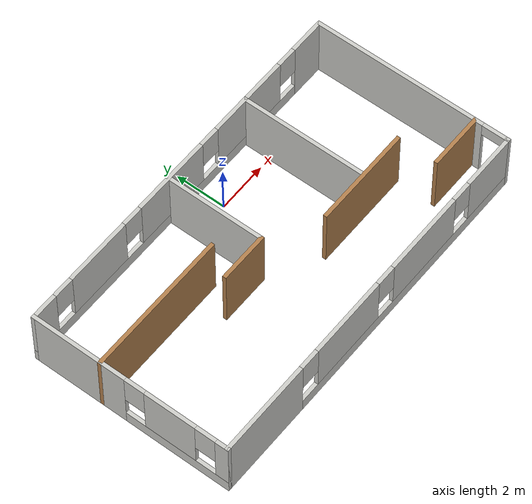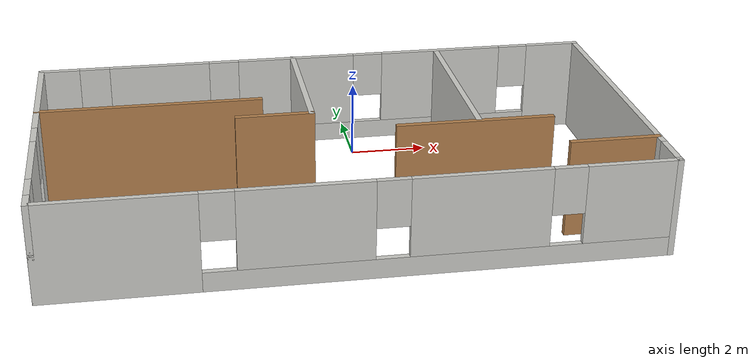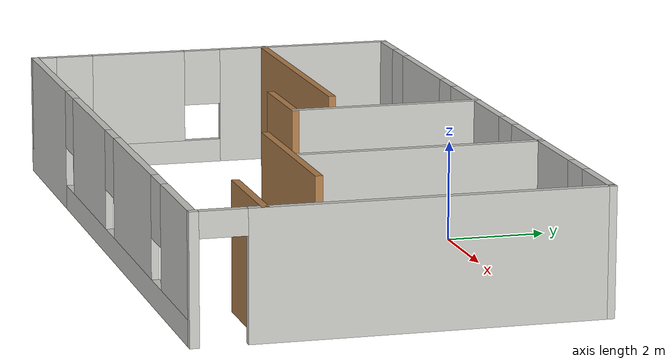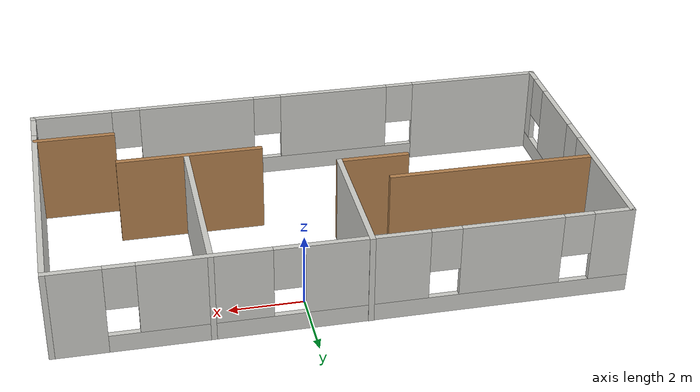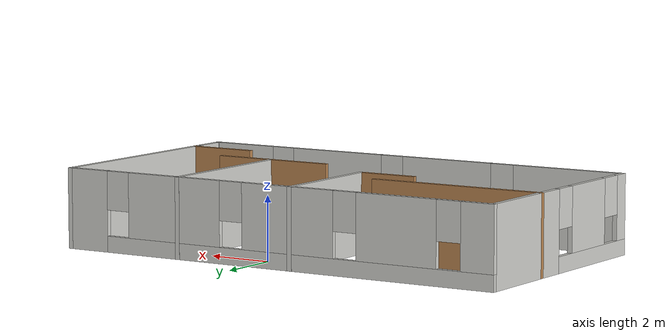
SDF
<?xml version='1.0'?>
<sdf version='1.7'>
  <model name='restaurant'>
    <pose>-0.886292 -2.87012 0 0 -0 0</pose>
    <link name='Wall_15'>
      <collision name='Wall_15_Collision'>
        <geometry>
          <box>
            <size>4 0.15 2.5</size>
          </box>
        </geometry>
        <pose>0 0 1.25 0 -0 0</pose>
      </collision>
      <visual name='Wall_15_Visual'>
        <pose>0 0 1.25 0 -0 0</pose>
        <geometry>
          <box>
            <size>4 0.15 2.5</size>
          </box>
        </geometry>
        <material>
          <script>
            <uri>file://media/materials/scripts/gazebo.material</uri>
            <name>Gazebo/CeilingTiled</name>
          </script>
          <ambient>1 1 1 1</ambient>
        </material>
        <meta>
          <layer>0</layer>
        </meta>
      </visual>
      <pose>-0.626194 2.00622 0 0 -0 -1.5708</pose>
    </link>
    <link name='Wall_16'>
      <collision name='Wall_16_Collision'>
        <geometry>
          <box>
            <size>2 0.15 2.5</size>
          </box>
        </geometry>
        <pose>0 0 1.25 0 -0 0</pose>
      </collision>
      <visual name='Wall_16_Visual'>
        <pose>0 0 1.25 0 -0 0</pose>
        <geometry>
          <box>
            <size>2 0.15 2.5</size>
          </box>
        </geometry>
        <material>
          <script>
            <uri>file://media/materials/scripts/gazebo.material</uri>
            <name>Gazebo/Wood</name>
          </script>
          <ambient>1 1 1 1</ambient>
        </material>
        <meta>
          <layer>0</layer>
        </meta>
      </visual>
      <pose>-1.55119 0.081215 0 0 -0 3.14159</pose>
    </link>
    <link name='Wall_19'>
      <collision name='Wall_19_Collision'>
        <geometry>
          <box>
            <size>5 0.15 2.5</size>
          </box>
        </geometry>
        <pose>0 0 1.25 0 -0 0</pose>
      </collision>
      <visual name='Wall_19_Visual'>
        <pose>0 0 1.25 0 -0 0</pose>
        <geometry>
          <box>
            <size>5 0.15 2.5</size>
          </box>
        </geometry>
        <material>
          <script>
            <uri>file://media/materials/scripts/gazebo.material</uri>
            <name>Gazebo/CeilingTiled</name>
          </script>
          <ambient>1 1 1 1</ambient>
        </material>
        <meta>
          <layer>0</layer>
        </meta>
      </visual>
      <pose>3.4023 1.49471 0 0 -0 -1.5708</pose>
    </link>
    <link name='Wall_2'>
      <pose>0 -3.93121 0 0 -0 0</pose>
      <visual name='Wall_2_Visual_0'>
        <pose>-5.60047 0 1.25 0 -0 0</pose>
        <geometry>
          <box>
            <size>3.79905 0.15 2.5</size>
          </box>
        </geometry>
        <material>
          <script>
            <uri>file://media/materials/scripts/gazebo.material</uri>
            <name>Gazebo/CeilingTiled</name>
          </script>
          <ambient>1 1 1 1</ambient>
        </material>
        <meta>
          <layer>0</layer>
        </meta>
      </visual>
      <collision name='Wall_2_Collision_0'>
        <geometry>
          <box>
            <size>3.79905 0.15 2.5</size>
          </box>
        </geometry>
        <pose>-5.60047 0 1.25 0 -0 0</pose>
      </collision>
      <visual name='Wall_2_Visual_1'>
        <pose>1.89953 0 0.25 0 -0 0</pose>
        <geometry>
          <box>
            <size>11.2009 0.15 0.5</size>
          </box>
        </geometry>
        <material>
          <script>
            <uri>file://media/materials/scripts/gazebo.material</uri>
            <name>Gazebo/CeilingTiled</name>
          </script>
          <ambient>1 1 1 1</ambient>
        </material>
        <meta>
          <layer>0</layer>
        </meta>
      </visual>
      <collision name='Wall_2_Collision_1'>
        <geometry>
          <box>
            <size>11.2009 0.15 0.5</size>
          </box>
        </geometry>
        <pose>1.89953 0 0.25 0 -0 0</pose>
      </collision>
      <visual name='Wall_2_Visual_2'>
        <pose>-1.30593 0 1.5 0 -0 0</pose>
        <geometry>
          <box>
            <size>3.19003 0.15 2</size>
          </box>
        </geometry>
        <material>
          <script>
            <uri>file://media/materials/scripts/gazebo.material</uri>
            <name>Gazebo/CeilingTiled</name>
          </script>
          <ambient>1 1 1 1</ambient>
        </material>
        <meta>
          <layer>0</layer>
        </meta>
      </visual>
      <collision name='Wall_2_Collision_2'>
        <geometry>
          <box>
            <size>3.19003 0.15 2</size>
          </box>
        </geometry>
        <pose>-1.30593 0 1.5 0 -0 0</pose>
      </collision>
      <visual name='Wall_2_Visual_3'>
        <pose>2.7506 0 1.5 0 -0 0</pose>
        <geometry>
          <box>
            <size>3.32303 0.15 2</size>
          </box>
        </geometry>
        <material>
          <script>
            <uri>file://media/materials/scripts/gazebo.material</uri>
            <name>Gazebo/CeilingTiled</name>
          </script>
          <ambient>1 1 1 1</ambient>
        </material>
        <meta>
          <layer>0</layer>
        </meta>
      </visual>
      <collision name='Wall_2_Collision_3'>
        <geometry>
          <box>
            <size>3.32303 0.15 2</size>
          </box>
        </geometry>
        <pose>2.7506 0 1.5 0 -0 0</pose>
      </collision>
      <visual name='Wall_2_Visual_4'>
        <pose>6.35606 0 1.5 0 -0 0</pose>
        <geometry>
          <box>
            <size>2.28789 0.15 2</size>
          </box>
        </geometry>
        <material>
          <script>
            <uri>file://media/materials/scripts/gazebo.material</uri>
            <name>Gazebo/CeilingTiled</name>
          </script>
          <ambient>1 1 1 1</ambient>
        </material>
        <meta>
          <layer>0</layer>
        </meta>
      </visual>
      <collision name='Wall_2_Collision_4'>
        <geometry>
          <box>
            <size>2.28789 0.15 2</size>
          </box>
        </geometry>
        <pose>6.35606 0 1.5 0 -0 0</pose>
      </collision>
      <visual name='Wall_2_Visual_5'>
        <pose>-3.30095 0 1.9 0 -0 0</pose>
        <geometry>
          <box>
            <size>0.8 0.15 1.2</size>
          </box>
        </geometry>
        <material>
          <script>
            <uri>file://media/materials/scripts/gazebo.material</uri>
            <name>Gazebo/CeilingTiled</name>
          </script>
          <ambient>1 1 1 1</ambient>
        </material>
        <meta>
          <layer>0</layer>
        </meta>
      </visual>
      <collision name='Wall_2_Collision_5'>
        <geometry>
          <box>
            <size>0.8 0.15 1.2</size>
          </box>
        </geometry>
        <pose>-3.30095 0 1.9 0 -0 0</pose>
      </collision>
      <visual name='Wall_2_Visual_6'>
        <pose>0.689084 0 1.9 0 -0 0</pose>
        <geometry>
          <box>
            <size>0.8 0.15 1.2</size>
          </box>
        </geometry>
        <material>
          <script>
            <uri>file://media/materials/scripts/gazebo.material</uri>
            <name>Gazebo/CeilingTiled</name>
          </script>
          <ambient>1 1 1 1</ambient>
        </material>
        <meta>
          <layer>0</layer>
        </meta>
      </visual>
      <collision name='Wall_2_Collision_6'>
        <geometry>
          <box>
            <size>0.8 0.15 1.2</size>
          </box>
        </geometry>
        <pose>0.689084 0 1.9 0 -0 0</pose>
      </collision>
      <visual name='Wall_2_Visual_7'>
        <pose>4.81211 0 1.9 0 -0 0</pose>
        <geometry>
          <box>
            <size>0.8 0.15 1.2</size>
          </box>
        </geometry>
        <material>
          <script>
            <uri>file://media/materials/scripts/gazebo.material</uri>
            <name>Gazebo/CeilingTiled</name>
          </script>
          <ambient>1 1 1 1</ambient>
        </material>
        <meta>
          <layer>0</layer>
        </meta>
      </visual>
      <collision name='Wall_2_Collision_7'>
        <geometry>
          <box>
            <size>0.8 0.15 1.2</size>
          </box>
        </geometry>
        <pose>4.81211 0 1.9 0 -0 0</pose>
      </collision>
    </link>
    <link name='Wall_21'>
      <collision name='Wall_21_Collision'>
        <geometry>
          <box>
            <size>4 0.15 2.5</size>
          </box>
        </geometry>
        <pose>0 0 1.25 0 -0 0</pose>
      </collision>
      <visual name='Wall_21_Visual'>
        <pose>0 0 1.25 0 -0 0</pose>
        <geometry>
          <box>
            <size>4 0.15 2.5</size>
          </box>
        </geometry>
        <material>
          <script>
            <uri>file://media/materials/scripts/gazebo.material</uri>
            <name>Gazebo/Wood</name>
          </script>
          <ambient>1 1 1 1</ambient>
        </material>
        <meta>
          <layer>0</layer>
        </meta>
      </visual>
      <pose>3.30569 -1.02793 0 0 -0 0</pose>
    </link>
    <link name='Wall_23'>
      <collision name='Wall_23_Collision'>
        <geometry>
          <box>
            <size>2.25 0.15 2.5</size>
          </box>
        </geometry>
        <pose>0 0 1.25 0 -0 0</pose>
      </collision>
      <visual name='Wall_23_Visual'>
        <pose>0 0 1.25 0 -0 0</pose>
        <geometry>
          <box>
            <size>2.25 0.15 2.5</size>
          </box>
        </geometry>
        <material>
          <script>
            <uri>file://media/materials/scripts/gazebo.material</uri>
            <name>Gazebo/Wood</name>
          </script>
          <ambient>1 1 1 1</ambient>
        </material>
        <meta>
          <layer>0</layer>
        </meta>
      </visual>
      <pose>6.34233 -2.59734 0 0 -0 3.14159</pose>
    </link>
    <link name='Wall_3'>
      <pose>7.425 -0.006215 0 0 -0 1.5708</pose>
      <visual name='Wall_3_Visual_0'>
        <pose>-3.9082 0 1.25 0 -0 0</pose>
        <geometry>
          <box>
            <size>0.183604 0.15 2.5</size>
          </box>
        </geometry>
        <material>
          <script>
            <uri>file://media/materials/scripts/gazebo.material</uri>
            <name>Gazebo/CeilingTiled</name>
          </script>
          <ambient>1 1 1 1</ambient>
        </material>
        <meta>
          <layer>0</layer>
        </meta>
      </visual>
      <collision name='Wall_3_Collision_0'>
        <geometry>
          <box>
            <size>0.183604 0.15 2.5</size>
          </box>
        </geometry>
        <pose>-3.9082 0 1.25 0 -0 0</pose>
      </collision>
      <visual name='Wall_3_Visual_1'>
        <pose>0.541802 0 1.25 0 -0 0</pose>
        <geometry>
          <box>
            <size>6.9164 0.15 2.5</size>
          </box>
        </geometry>
        <material>
          <script>
            <uri>file://media/materials/scripts/gazebo.material</uri>
            <name>Gazebo/CeilingTiled</name>
          </script>
          <ambient>1 1 1 1</ambient>
        </material>
        <meta>
          <layer>0</layer>
        </meta>
      </visual>
      <collision name='Wall_3_Collision_1'>
        <geometry>
          <box>
            <size>6.9164 0.15 2.5</size>
          </box>
        </geometry>
        <pose>0.541802 0 1.25 0 -0 0</pose>
      </collision>
      <visual name='Wall_3_Visual_2'>
        <pose>-3.3664 0 2.25 0 -0 0</pose>
        <geometry>
          <box>
            <size>0.9 0.15 0.5</size>
          </box>
        </geometry>
        <material>
          <script>
            <uri>file://media/materials/scripts/gazebo.material</uri>
            <name>Gazebo/CeilingTiled</name>
          </script>
          <ambient>1 1 1 1</ambient>
        </material>
        <meta>
          <layer>0</layer>
        </meta>
      </visual>
      <collision name='Wall_3_Collision_2'>
        <geometry>
          <box>
            <size>0.9 0.15 0.5</size>
          </box>
        </geometry>
        <pose>-3.3664 0 2.25 0 -0 0</pose>
      </collision>
    </link>
    <link name='Wall_4'>
      <pose>0 3.91879 0 0 -0 3.14159</pose>
      <visual name='Wall_4_Visual_0'>
        <pose>-6.75506 0 1.25 0 -0 0</pose>
        <geometry>
          <box>
            <size>1.48988 0.15 2.5</size>
          </box>
        </geometry>
        <material>
          <script>
            <uri>file://media/materials/scripts/gazebo.material</uri>
            <name>Gazebo/CeilingTiled</name>
          </script>
          <ambient>1 1 1 1</ambient>
        </material>
        <meta>
          <layer>0</layer>
        </meta>
      </visual>
      <collision name='Wall_4_Collision_0'>
        <geometry>
          <box>
            <size>1.48988 0.15 2.5</size>
          </box>
        </geometry>
        <pose>-6.75506 0 1.25 0 -0 0</pose>
      </collision>
      <visual name='Wall_4_Visual_1'>
        <pose>0.74494 0 0.25 0 -0 0</pose>
        <geometry>
          <box>
            <size>13.5101 0.15 0.5</size>
          </box>
        </geometry>
        <material>
          <script>
            <uri>file://media/materials/scripts/gazebo.material</uri>
            <name>Gazebo/CeilingTiled</name>
          </script>
          <ambient>1 1 1 1</ambient>
        </material>
        <meta>
          <layer>0</layer>
        </meta>
      </visual>
      <collision name='Wall_4_Collision_1'>
        <geometry>
          <box>
            <size>13.5101 0.15 0.5</size>
          </box>
        </geometry>
        <pose>0.74494 0 0.25 0 -0 0</pose>
      </collision>
      <visual name='Wall_4_Visual_2'>
        <pose>-3.53531 0 1.5 0 -0 0</pose>
        <geometry>
          <box>
            <size>3.34963 0.15 2</size>
          </box>
        </geometry>
        <material>
          <script>
            <uri>file://media/materials/scripts/gazebo.material</uri>
            <name>Gazebo/CeilingTiled</name>
          </script>
          <ambient>1 1 1 1</ambient>
        </material>
        <meta>
          <layer>0</layer>
        </meta>
      </visual>
      <collision name='Wall_4_Collision_2'>
        <geometry>
          <box>
            <size>3.34963 0.15 2</size>
          </box>
        </geometry>
        <pose>-3.53531 0 1.5 0 -0 0</pose>
      </collision>
      <visual name='Wall_4_Visual_3'>
        <pose>0.534525 0 1.5 0 -0 0</pose>
        <geometry>
          <box>
            <size>3.19003 0.15 2</size>
          </box>
        </geometry>
        <material>
          <script>
            <uri>file://media/materials/scripts/gazebo.material</uri>
            <name>Gazebo/CeilingTiled</name>
          </script>
          <ambient>1 1 1 1</ambient>
        </material>
        <meta>
          <layer>0</layer>
        </meta>
      </visual>
      <collision name='Wall_4_Collision_3'>
        <geometry>
          <box>
            <size>3.19003 0.15 2</size>
          </box>
        </geometry>
        <pose>0.534525 0 1.5 0 -0 0</pose>
      </collision>
      <visual name='Wall_4_Visual_4'>
        <pose>4.27185 0 1.5 0 -0 0</pose>
        <geometry>
          <box>
            <size>2.68463 0.15 2</size>
          </box>
        </geometry>
        <material>
          <script>
            <uri>file://media/materials/scripts/gazebo.material</uri>
            <name>Gazebo/CeilingTiled</name>
          </script>
          <ambient>1 1 1 1</ambient>
        </material>
        <meta>
          <layer>0</layer>
        </meta>
      </visual>
      <collision name='Wall_4_Collision_4'>
        <geometry>
          <box>
            <size>2.68463 0.15 2</size>
          </box>
        </geometry>
        <pose>4.27185 0 1.5 0 -0 0</pose>
      </collision>
      <visual name='Wall_4_Visual_5'>
        <pose>6.95708 0 1.5 0 -0 0</pose>
        <geometry>
          <box>
            <size>1.08583 0.15 2</size>
          </box>
        </geometry>
        <material>
          <script>
            <uri>file://media/materials/scripts/gazebo.material</uri>
            <name>Gazebo/CeilingTiled</name>
          </script>
          <ambient>1 1 1 1</ambient>
        </material>
        <meta>
          <layer>0</layer>
        </meta>
      </visual>
      <collision name='Wall_4_Collision_5'>
        <geometry>
          <box>
            <size>1.08583 0.15 2</size>
          </box>
        </geometry>
        <pose>6.95708 0 1.5 0 -0 0</pose>
      </collision>
      <visual name='Wall_4_Visual_6'>
        <pose>-5.61012 0 1.9 0 -0 0</pose>
        <geometry>
          <box>
            <size>0.8 0.15 1.2</size>
          </box>
        </geometry>
        <material>
          <script>
            <uri>file://media/materials/scripts/gazebo.material</uri>
            <name>Gazebo/CeilingTiled</name>
          </script>
          <ambient>1 1 1 1</ambient>
        </material>
        <meta>
          <layer>0</layer>
        </meta>
      </visual>
      <collision name='Wall_4_Collision_6'>
        <geometry>
          <box>
            <size>0.8 0.15 1.2</size>
          </box>
        </geometry>
        <pose>-5.61012 0 1.9 0 -0 0</pose>
      </collision>
      <visual name='Wall_4_Visual_7'>
        <pose>-1.46049 0 1.9 0 -0 0</pose>
        <geometry>
          <box>
            <size>0.8 0.15 1.2</size>
          </box>
        </geometry>
        <material>
          <script>
            <uri>file://media/materials/scripts/gazebo.material</uri>
            <name>Gazebo/CeilingTiled</name>
          </script>
          <ambient>1 1 1 1</ambient>
        </material>
        <meta>
          <layer>0</layer>
        </meta>
      </visual>
      <collision name='Wall_4_Collision_7'>
        <geometry>
          <box>
            <size>0.8 0.15 1.2</size>
          </box>
        </geometry>
        <pose>-1.46049 0 1.9 0 -0 0</pose>
      </collision>
      <visual name='Wall_4_Visual_8'>
        <pose>2.52954 0 1.9 0 -0 0</pose>
        <geometry>
          <box>
            <size>0.8 0.15 1.2</size>
          </box>
        </geometry>
        <material>
          <script>
            <uri>file://media/materials/scripts/gazebo.material</uri>
            <name>Gazebo/CeilingTiled</name>
          </script>
          <ambient>1 1 1 1</ambient>
        </material>
        <meta>
          <layer>0</layer>
        </meta>
      </visual>
      <collision name='Wall_4_Collision_8'>
        <geometry>
          <box>
            <size>0.8 0.15 1.2</size>
          </box>
        </geometry>
        <pose>2.52954 0 1.9 0 -0 0</pose>
      </collision>
      <visual name='Wall_4_Visual_9'>
        <pose>6.01417 0 1.9 0 -0 0</pose>
        <geometry>
          <box>
            <size>0.8 0.15 1.2</size>
          </box>
        </geometry>
        <material>
          <script>
            <uri>file://media/materials/scripts/gazebo.material</uri>
            <name>Gazebo/CeilingTiled</name>
          </script>
          <ambient>1 1 1 1</ambient>
        </material>
        <meta>
          <layer>0</layer>
        </meta>
      </visual>
      <collision name='Wall_4_Collision_9'>
        <geometry>
          <box>
            <size>0.8 0.15 1.2</size>
          </box>
        </geometry>
        <pose>6.01417 0 1.9 0 -0 0</pose>
      </collision>
    </link>
    <link name='Wall_5'>
      <pose>-7.425 -0.006215 0 0 -0 -1.5708</pose>
      <visual name='Wall_5_Visual_0'>
        <pose>-2.08815 0 1.25 0 -0 0</pose>
        <geometry>
          <box>
            <size>3.82371 0.15 2.5</size>
          </box>
        </geometry>
        <material>
          <script>
            <uri>file://media/materials/scripts/gazebo.material</uri>
            <name>Gazebo/CeilingTiled</name>
          </script>
          <ambient>1 1 1 1</ambient>
        </material>
        <meta>
          <layer>0</layer>
        </meta>
      </visual>
      <collision name='Wall_5_Collision_0'>
        <geometry>
          <box>
            <size>3.82371 0.15 2.5</size>
          </box>
        </geometry>
        <pose>-2.08815 0 1.25 0 -0 0</pose>
      </collision>
      <visual name='Wall_5_Visual_1'>
        <pose>1.91185 0 0.25 0 -0 0</pose>
        <geometry>
          <box>
            <size>4.17629 0.15 0.5</size>
          </box>
        </geometry>
        <material>
          <script>
            <uri>file://media/materials/scripts/gazebo.material</uri>
            <name>Gazebo/CeilingTiled</name>
          </script>
          <ambient>1 1 1 1</ambient>
        </material>
        <meta>
          <layer>0</layer>
        </meta>
      </visual>
      <collision name='Wall_5_Collision_1'>
        <geometry>
          <box>
            <size>4.17629 0.15 0.5</size>
          </box>
        </geometry>
        <pose>1.91185 0 0.25 0 -0 0</pose>
      </collision>
      <visual name='Wall_5_Visual_2'>
        <pose>1.64682 0 1.5 0 -0 0</pose>
        <geometry>
          <box>
            <size>2.04622 0.15 2</size>
          </box>
        </geometry>
        <material>
          <script>
            <uri>file://media/materials/scripts/gazebo.material</uri>
            <name>Gazebo/CeilingTiled</name>
          </script>
          <ambient>1 1 1 1</ambient>
        </material>
        <meta>
          <layer>0</layer>
        </meta>
      </visual>
      <collision name='Wall_5_Collision_2'>
        <geometry>
          <box>
            <size>2.04622 0.15 2</size>
          </box>
        </geometry>
        <pose>1.64682 0 1.5 0 -0 0</pose>
      </collision>
      <visual name='Wall_5_Visual_3'>
        <pose>3.73496 0 1.5 0 -0 0</pose>
        <geometry>
          <box>
            <size>0.530073 0.15 2</size>
          </box>
        </geometry>
        <material>
          <script>
            <uri>file://media/materials/scripts/gazebo.material</uri>
            <name>Gazebo/CeilingTiled</name>
          </script>
          <ambient>1 1 1 1</ambient>
        </material>
        <meta>
          <layer>0</layer>
        </meta>
      </visual>
      <collision name='Wall_5_Collision_3'>
        <geometry>
          <box>
            <size>0.530073 0.15 2</size>
          </box>
        </geometry>
        <pose>3.73496 0 1.5 0 -0 0</pose>
      </collision>
      <visual name='Wall_5_Visual_4'>
        <pose>0.223706 0 1.9 0 -0 0</pose>
        <geometry>
          <box>
            <size>0.8 0.15 1.2</size>
          </box>
        </geometry>
        <material>
          <script>
            <uri>file://media/materials/scripts/gazebo.material</uri>
            <name>Gazebo/CeilingTiled</name>
          </script>
          <ambient>1 1 1 1</ambient>
        </material>
        <meta>
          <layer>0</layer>
        </meta>
      </visual>
      <collision name='Wall_5_Collision_4'>
        <geometry>
          <box>
            <size>0.8 0.15 1.2</size>
          </box>
        </geometry>
        <pose>0.223706 0 1.9 0 -0 0</pose>
      </collision>
      <visual name='Wall_5_Visual_5'>
        <pose>3.06993 0 1.9 0 -0 0</pose>
        <geometry>
          <box>
            <size>0.8 0.15 1.2</size>
          </box>
        </geometry>
        <material>
          <script>
            <uri>file://media/materials/scripts/gazebo.material</uri>
            <name>Gazebo/CeilingTiled</name>
          </script>
          <ambient>1 1 1 1</ambient>
        </material>
        <meta>
          <layer>0</layer>
        </meta>
      </visual>
      <collision name='Wall_5_Collision_5'>
        <geometry>
          <box>
            <size>0.8 0.15 1.2</size>
          </box>
        </geometry>
        <pose>3.06993 0 1.9 0 -0 0</pose>
      </collision>
    </link>
    <link name='Wall_8'>
      <collision name='Wall_8_Collision'>
        <geometry>
          <box>
            <size>5.75 0.15 2.5</size>
          </box>
        </geometry>
        <pose>0 0 1.25 0 -0 0</pose>
      </collision>
      <visual name='Wall_8_Visual'>
        <pose>0 0 1.25 0 -0 0</pose>
        <geometry>
          <box>
            <size>5.75 0.15 2.5</size>
          </box>
        </geometry>
        <material>
          <script>
            <uri>file://media/materials/scripts/gazebo.material</uri>
            <name>Gazebo/Wood</name>
          </script>
          <ambient>1 1 1 1</ambient>
        </material>
        <meta>
          <layer>0</layer>
        </meta>
      </visual>
      <pose>-4.625 1.17602 0 0 -0 0</pose>
    </link>
    <static>1</static>
  </model>
</sdf>
